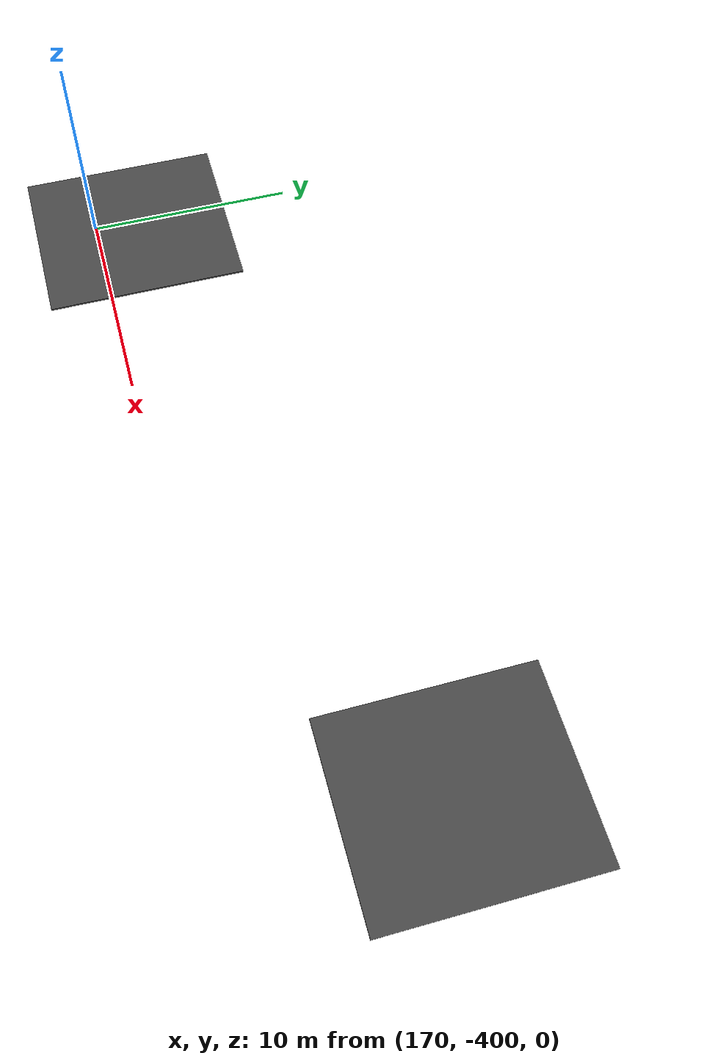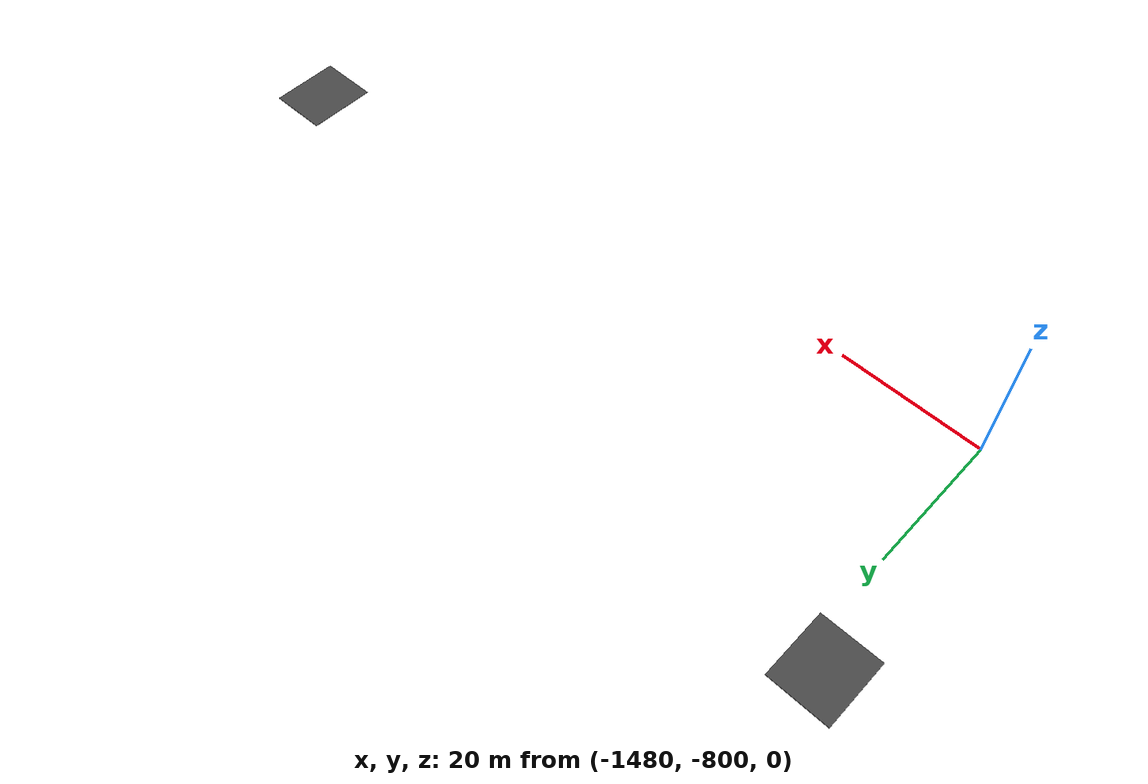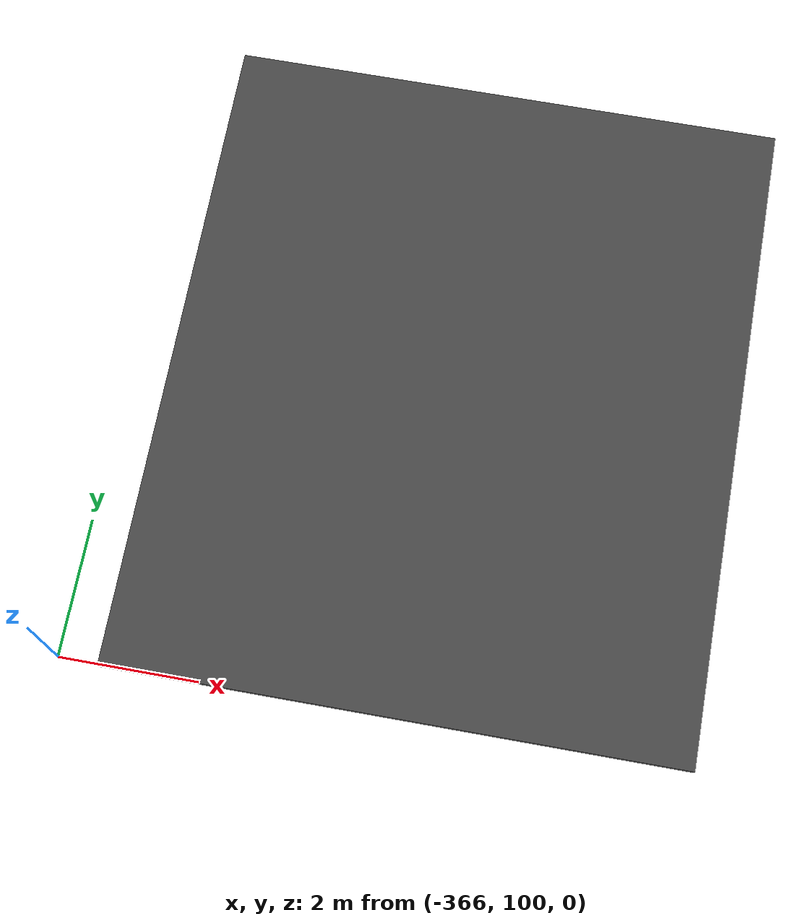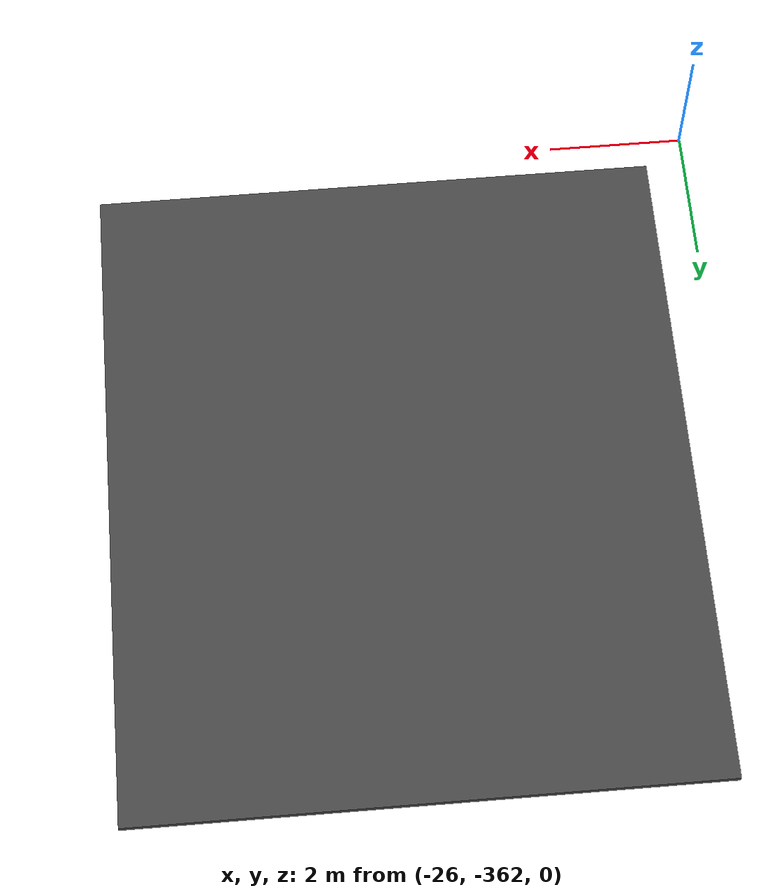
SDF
<sdf version="1.7">
 <world name="default">
  <light name="sun" type="directional">
   <pose>0 0 10 0 -0 0</pose>
   <diffuse>0.8 0.8 0.8 1</diffuse>
   <specular>0.2 0.2 0.2 1</specular>
   <attenuation>
    <range>1000</range>
    <constant>0.9</constant>
    <linear>0.01</linear>
    <quadratic>0.001</quadratic>
   </attenuation>
   <direction>-0.5 0.1 -0.9</direction>
   <spot><inner_angle>0</inner_angle><outer_angle>0</outer_angle><falloff>0</falloff></spot>
  </light>
  <gravity>0 0 -9.8</gravity>
  <magnetic_field>6e-06 2.3e-05 -4.2e-05</magnetic_field>
  <atmosphere type="adiabatic"/>
  <physics type="ode">
   <max_step_size>0.004</max_step_size>
   <real_time_factor>1</real_time_factor>
   <real_time_update_rate>250</real_time_update_rate>
  </physics>
  <scene><ambient>0.4 0.4 0.4 1</ambient><background>0.7 0.7 0.7 1</background><shadows>1</shadows></scene>
  <audio><device>default</device></audio>
  <spherical_coordinates>
   <surface_model>EARTH_WGS84</surface_model>
   <latitude_deg>0</latitude_deg>
   <longitude_deg>0</longitude_deg>
   <elevation>0</elevation>
   <heading_deg>0</heading_deg>
  </spherical_coordinates>
  <model name="asphalt_plane">
   <static>1</static>
   <link name="link">
    <collision name="collision"><geometry><box><size>8.36062 9.77182 0.1</size></box></geometry></collision>
    <visual name="visual">
     <cast_shadows>0</cast_shadows>
     <geometry><box><size>8.36062 9.77182 0.1</size></box></geometry>
     <material>
      <script>
       <uri>model://asphalt_plane/materials/scripts</uri>
       <uri>model://asphalt_plane/materials/textures</uri>
       <name>vrc/asphalt</name>
      </script>
     </material>
    </visual>
   </link>
   <pose>-1290.25 -524.919 0 0 -0 0</pose>
  </model>
  <model name="asphalt_plane_clone">
   <static>1</static>
   <link name="link">
    <collision name="collision"><geometry><box><size>8.36062 9.77183 0.1</size></box></geometry></collision>
    <visual name="visual">
     <cast_shadows>0</cast_shadows>
     <geometry><box><size>8.36062 9.77183 0.1</size></box></geometry>
     <material>
      <script>
       <uri>model://asphalt_plane/materials/scripts</uri>
       <uri>model://asphalt_plane/materials/textures</uri>
       <name>vrc/asphalt</name>
      </script>
     </material>
    </visual>
   </link>
   <pose>-1377.18 -786.067 0 0 -0 0</pose>
  </model>
  <model name="asphalt_plane_clone_0">
   <static>1</static>
   <link name="link">
    <collision name="collision"><geometry><box><size>8.36062 9.77183 0.1</size></box></geometry></collision>
    <visual name="visual">
     <cast_shadows>0</cast_shadows>
     <geometry><box><size>8.36062 9.77183 0.1</size></box></geometry>
     <material>
      <script>
       <uri>model://asphalt_plane/materials/scripts</uri>
       <uri>model://asphalt_plane/materials/textures</uri>
       <name>vrc/asphalt</name>
      </script>
     </material>
    </visual>
   </link>
   <pose>-1483.01 -765.052 0 0 -0 0</pose>
  </model>
  <model name="asphalt_plane_clone_1">
   <static>1</static>
   <link name="link">
    <collision name="collision"><geometry><box><size>8.36062 9.77183 0.1</size></box></geometry></collision>
    <visual name="visual">
     <cast_shadows>0</cast_shadows>
     <geometry><box><size>8.36062 9.77183 0.1</size></box></geometry>
     <material>
      <script>
       <uri>model://asphalt_plane/materials/scripts</uri>
       <uri>model://asphalt_plane/materials/textures</uri>
       <name>vrc/asphalt</name>
      </script>
     </material>
    </visual>
   </link>
   <pose>-361.255 104.86 0 0 -0 0</pose>
  </model>
  <model name="asphalt_plane_clone_2">
   <static>1</static>
   <link name="link">
    <collision name="collision"><geometry><box><size>8.36062 9.77183 0.1</size></box></geometry></collision>
    <visual name="visual">
     <cast_shadows>0</cast_shadows>
     <geometry><box><size>8.36062 9.77183 0.1</size></box></geometry>
     <material>
      <script>
       <uri>model://asphalt_plane/materials/scripts</uri>
       <uri>model://asphalt_plane/materials/textures</uri>
       <name>vrc/asphalt</name>
      </script>
     </material>
    </visual>
   </link>
   <pose>-678.816 296.746 0 0 -0 0</pose>
  </model>
  <model name="asphalt_plane_clone_3">
   <static>1</static>
   <link name="link">
    <collision name="collision"><geometry><box><size>8.36062 9.77183 0.1</size></box></geometry></collision>
    <visual name="visual">
     <cast_shadows>0</cast_shadows>
     <geometry><box><size>8.36062 9.77183 0.1</size></box></geometry>
     <material>
      <script>
       <uri>model://asphalt_plane/materials/scripts</uri>
       <uri>model://asphalt_plane/materials/textures</uri>
       <name>vrc/asphalt</name>
      </script>
     </material>
    </visual>
   </link>
   <pose>-357.17 292.531 0 0 -0 0</pose>
  </model>
  <model name="asphalt_plane_clone_4">
   <static>1</static>
   <link name="link">
    <collision name="collision"><geometry><box><size>8.36062 9.77183 0.1</size></box></geometry></collision>
    <visual name="visual">
     <cast_shadows>0</cast_shadows>
     <geometry><box><size>8.36062 9.77183 0.1</size></box></geometry>
     <material>
      <script>
       <uri>model://asphalt_plane/materials/scripts</uri>
       <uri>model://asphalt_plane/materials/textures</uri>
       <name>vrc/asphalt</name>
      </script>
     </material>
    </visual>
   </link>
   <pose>154.928 -622.077 0 0 -0 0</pose>
  </model>
  <model name="asphalt_plane_clone_5">
   <static>1</static>
   <link name="link">
    <collision name="collision"><geometry><box><size>8.36062 9.77183 0.1</size></box></geometry></collision>
    <visual name="visual">
     <cast_shadows>0</cast_shadows>
     <geometry><box><size>8.36062 9.77183 0.1</size></box></geometry>
     <material>
      <script>
       <uri>model://asphalt_plane/materials/scripts</uri>
       <uri>model://asphalt_plane/materials/textures</uri>
       <name>vrc/asphalt</name>
      </script>
     </material>
    </visual>
   </link>
   <pose>-21.2435 -356.671 0 0 -0 0</pose>
  </model>
  <model name="asphalt_plane_clone_6">
   <static>1</static>
   <link name="link">
    <collision name="collision"><geometry><box><size>8.36062 9.77183 0.1</size></box></geometry></collision>
    <visual name="visual">
     <cast_shadows>0</cast_shadows>
     <geometry><box><size>8.36062 9.77183 0.1</size></box></geometry>
     <material>
      <script>
       <uri>model://asphalt_plane/materials/scripts</uri>
       <uri>model://asphalt_plane/materials/textures</uri>
       <name>vrc/asphalt</name>
      </script>
     </material>
    </visual>
   </link>
   <pose>201.608 -391.197 0 0 -0 0</pose>
  </model>
  <model name="asphalt_plane_clone_7">
   <static>1</static>
   <link name="link">
    <collision name="collision"><geometry><box><size>8.36062 9.77183 0.1</size></box></geometry></collision>
    <visual name="visual">
     <cast_shadows>0</cast_shadows>
     <geometry><box><size>8.36062 9.77183 0.1</size></box></geometry>
     <material>
      <script>
       <uri>model://asphalt_plane/materials/scripts</uri>
       <uri>model://asphalt_plane/materials/textures</uri>
       <name>vrc/asphalt</name>
      </script>
     </material>
    </visual>
   </link>
   <pose>170.451 -398.14 0 0 -0 0</pose>
  </model>
 </world>
</sdf>
